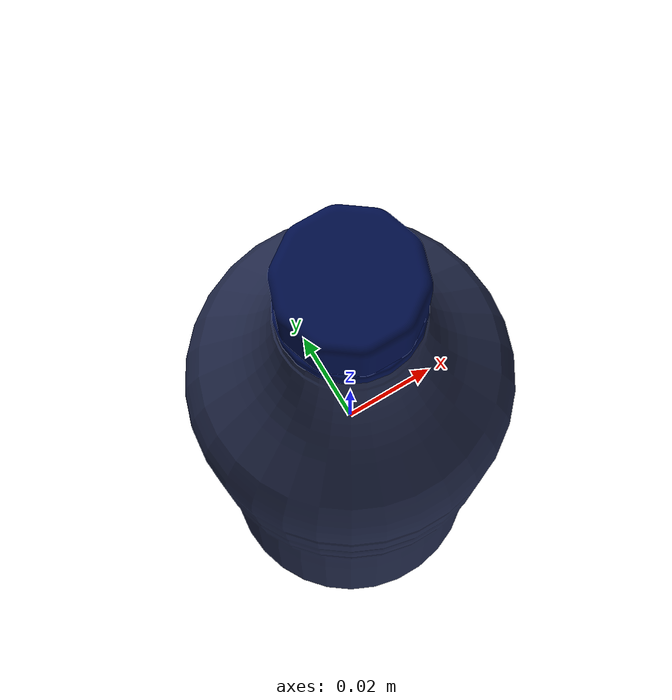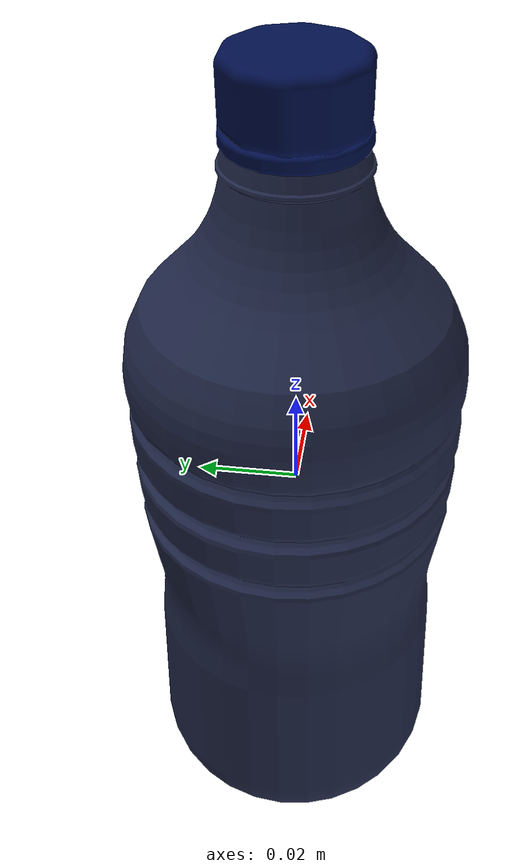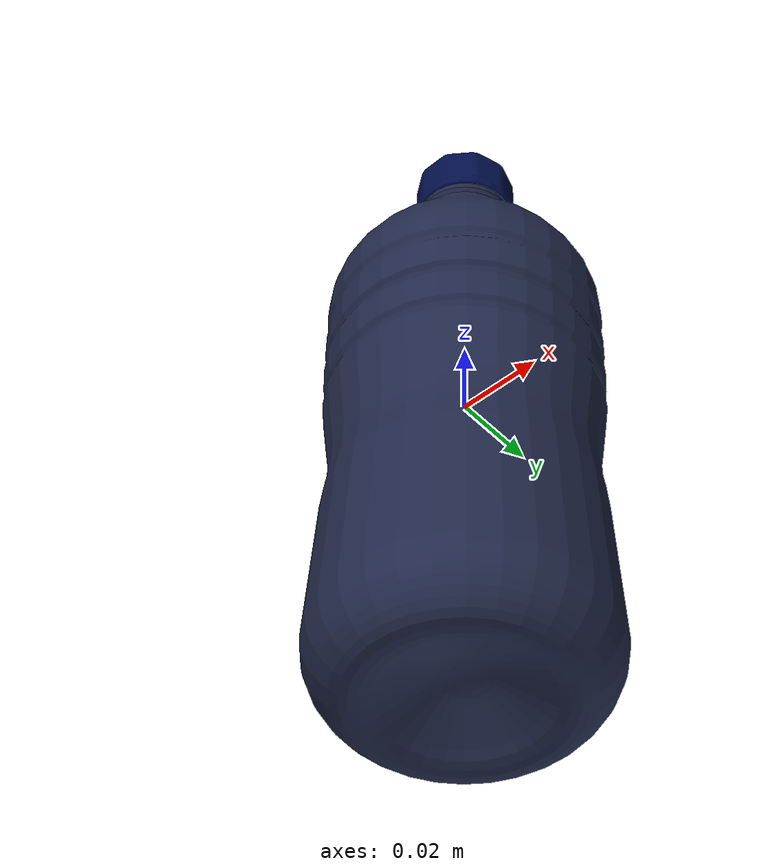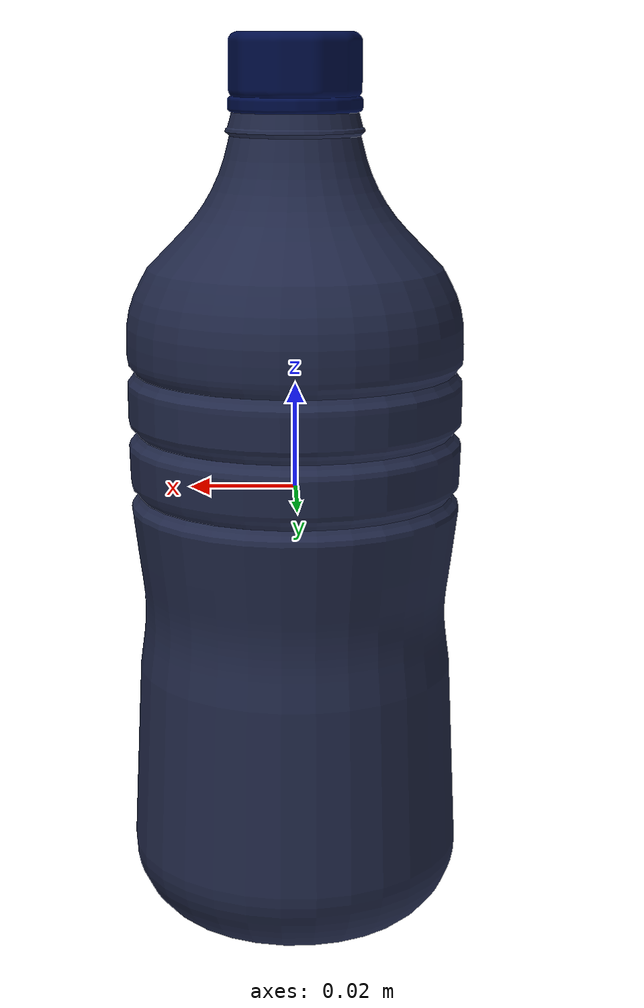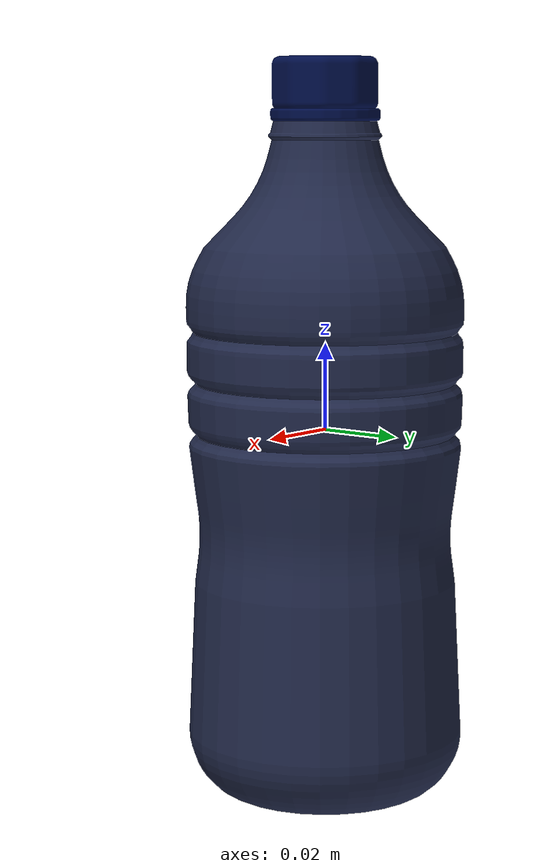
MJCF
<?xml version='1.0' encoding='utf-8'?>
<mujoco model="bottled_water_3">
  <asset>
    <mesh file="visual/model_normalized_0.obj" name="model_normalized_0_vis" scale="0.169697 0.169697 0.169697" refquat="1.0 0.0 0.0 0.0" />
    <mesh file="visual/model_normalized_1.obj" name="model_normalized_1_vis" scale="0.169697 0.169697 0.169697" refquat="1.0 0.0 0.0 0.0" />
    <material name="lambert2" specular="0.5" shininess="0.15999998099999999" rgba="0.000000 0.055700 0.291600 1.0" />
    <material name="lambert3" specular="0.5" shininess="0.15999998099999999" rgba="0.132860 0.163258 0.292000 1.0" />
    <mesh file="collision/collision_mesh_collision_0.obj" name="bottled_collision_mesh_0" scale="0.169697 0.169697 0.169697" refquat="1.0 0.0 0.0 0.0" />
    <mesh file="collision/collision_mesh_collision_1.obj" name="bottled_collision_mesh_1" scale="0.169697 0.169697 0.169697" refquat="1.0 0.0 0.0 0.0" />
    <mesh file="collision/collision_mesh_collision_2.obj" name="bottled_collision_mesh_2" scale="0.169697 0.169697 0.169697" refquat="1.0 0.0 0.0 0.0" />
    <mesh file="collision/collision_mesh_collision_3.obj" name="bottled_collision_mesh_3" scale="0.169697 0.169697 0.169697" refquat="1.0 0.0 0.0 0.0" />
    <mesh file="collision/collision_mesh_collision_4.obj" name="bottled_collision_mesh_4" scale="0.169697 0.169697 0.169697" refquat="1.0 0.0 0.0 0.0" />
    <mesh file="collision/collision_mesh_collision_5.obj" name="bottled_collision_mesh_5" scale="0.169697 0.169697 0.169697" refquat="1.0 0.0 0.0 0.0" />
    <mesh file="collision/collision_mesh_collision_6.obj" name="bottled_collision_mesh_6" scale="0.169697 0.169697 0.169697" refquat="1.0 0.0 0.0 0.0" />
    <mesh file="collision/collision_mesh_collision_7.obj" name="bottled_collision_mesh_7" scale="0.169697 0.169697 0.169697" refquat="1.0 0.0 0.0 0.0" />
    <mesh file="collision/collision_mesh_collision_8.obj" name="bottled_collision_mesh_8" scale="0.169697 0.169697 0.169697" refquat="1.0 0.0 0.0 0.0" />
    <mesh file="collision/collision_mesh_collision_9.obj" name="bottled_collision_mesh_9" scale="0.169697 0.169697 0.169697" refquat="1.0 0.0 0.0 0.0" />
    <mesh file="collision/collision_mesh_collision_10.obj" name="bottled_collision_mesh_10" scale="0.169697 0.169697 0.169697" refquat="1.0 0.0 0.0 0.0" />
    </asset>
  <default>
    <default class="region">
      <geom group="1" conaffinity="0" contype="0" rgba="0 1 0 0" />
      </default>
    <default class="collision">
      <geom group="3" rgba="0.5 0 0 0.5" density="1000.0" />
      </default>
    </default>
  <worldbody>
    <body>
      <body name="object">
        <geom density="100" friction="0.95 0.3 0.1" type="mesh" mesh="model_normalized_0_vis" conaffinity="0" contype="0" group="1" material="lambert2" />
        <geom density="100" friction="0.95 0.3 0.1" type="mesh" mesh="model_normalized_1_vis" conaffinity="0" contype="0" group="1" material="lambert3" />
        <geom class="region" name="reg_bbox" type="box" pos="0.00016527769999999996 0.0002475508000000001 -0.0001212988000000026" size="0.0255259396 0.026207021399999995 0.06981741339999999" />
        <geom mesh="bottled_collision_mesh_0" type="mesh" class="collision"  solref="0.004 1" solimp="0.998 0.998 0.001"/>
        <geom mesh="bottled_collision_mesh_1" type="mesh" class="collision"  solref="0.004 1" solimp="0.998 0.998 0.001"/>
        <geom mesh="bottled_collision_mesh_2" type="mesh" class="collision"  solref="0.004 1" solimp="0.998 0.998 0.001"/>
        <geom mesh="bottled_collision_mesh_3" type="mesh" class="collision"  solref="0.004 1" solimp="0.998 0.998 0.001"/>
        <geom mesh="bottled_collision_mesh_4" type="mesh" class="collision"  solref="0.004 1" solimp="0.998 0.998 0.001"/>
        <geom mesh="bottled_collision_mesh_5" type="mesh" class="collision"  solref="0.004 1" solimp="0.998 0.998 0.001"/>
        <geom mesh="bottled_collision_mesh_6" type="mesh" class="collision"  solref="0.004 1" solimp="0.998 0.998 0.001"/>
        <geom mesh="bottled_collision_mesh_7" type="mesh" class="collision"  solref="0.004 1" solimp="0.998 0.998 0.001"/>
        <geom mesh="bottled_collision_mesh_8" type="mesh" class="collision"  solref="0.004 1" solimp="0.998 0.998 0.001"/>
        <geom mesh="bottled_collision_mesh_9" type="mesh" class="collision"  solref="0.004 1" solimp="0.998 0.998 0.001"/>
        <geom mesh="bottled_collision_mesh_10" type="mesh" class="collision"  solref="0.004 1" solimp="0.998 0.998 0.001"/>
        </body>
      </body>
    </worldbody>
  </mujoco>
